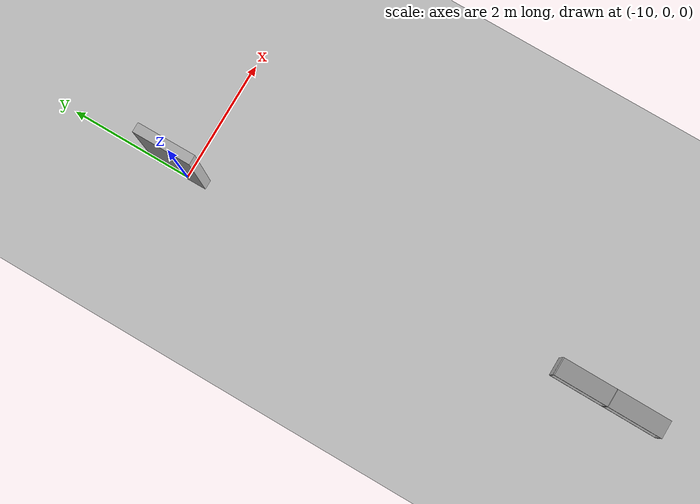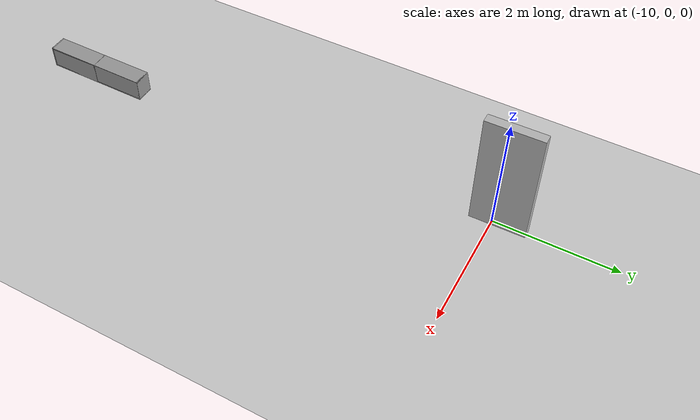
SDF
<sdf version="1.7">
 <world name="default">
  <model name="ground_plane">
   <static>1</static>
   <link name="link">
    <collision name="collision">
     <geometry><plane><normal>0 0 1</normal><size>100 100</size></plane></geometry>
     <surface><friction><ode><mu>100</mu><mu2>50</mu2></ode></friction></surface>
    </collision>
    <visual name="visual">
     <cast_shadows>0</cast_shadows>
     <geometry><plane><normal>0 0 1</normal><size>100 100</size></plane></geometry>
     <material>
      <script><uri>file://media/materials/scripts/gazebo.material</uri><name>Gazebo/Grey</name></script>
     </material>
    </visual>
   </link>
  </model>
  <model name="door">
   <link name="link_0">
    <visual name="visual">
     <pose>0 0 1 0 -0 0</pose>
     <geometry><box><size>0.9 0.15 2</size></box></geometry>
     <material>
      <script>
       <uri>model://door/materials/scripts</uri>
       <uri>model://door/materials/textures</uri>
       <name>door</name>
      </script>
     </material>
    </visual>
    <collision name="collision">
     <pose>0 0 1 0 -0 0</pose>
     <geometry><box><size>0.9 0.15 2</size></box></geometry>
    </collision>
   </link>
   <static>1</static>
   <pose>-9.95414 0.113019 0.058309 5.2e-05 0.011006 -1.56611</pose>
  </model>
  <model name="Wall_Cabinet_36x15W_clone_0">
   <link name="Wall_0">
    <pose>0 0 0.01 0 -0 0</pose>
    <inertial>
     <mass>1.9796</mass>
     <inertia><ixx>0.0145</ixx><iyy>0.1511</iyy><izz>0.1367</izz><ixy>0</ixy><ixz>0</ixz><iyz>0</iyz></inertia>
    </inertial>
    <collision name="Wall_0_Collision"><geometry><box><size>0.91 0.296 0.02</size></box></geometry></collision>
    <visual name="Wall_0_Visual">
     <geometry><box><size>0.91 0.296 0.02</size></box></geometry>
     <material>
      <script><uri>file://media/materials/scripts/gazebo.material</uri><name>Gazebo/Grey</name></script>
      <ambient>1 1 1 1</ambient>
     </material>
    </visual>
   </link>
   <joint name="0_2" type="fixed">
    <pose>-0.455 0 0 0 -0 0</pose>
    <parent>Wall_2</parent>
    <child>Wall_0</child>
    <axis><xyz>0 0 1</xyz><limit><lower>-1e+16</lower><upper>1e+16</upper></limit></axis>
   </joint>
   <joint name="0_4" type="fixed">
    <pose>0.455 0 0 0 -0 0</pose>
    <parent>Wall_4</parent>
    <child>Wall_0</child>
    <axis><xyz>0 0 1</xyz><limit><lower>-1e+16</lower><upper>1e+16</upper></limit></axis>
   </joint>
   <joint name="0_8" type="fixed">
    <pose>0 -0.148 0 0 -0 0</pose>
    <parent>Wall_8</parent>
    <child>Wall_0</child>
    <axis><xyz>0 0 1</xyz><limit><lower>-1e+16</lower><upper>1e+16</upper></limit></axis>
   </joint>
   <link name="Wall_2">
    <pose>-0.445 0 0.192 0 -0 0</pose>
    <inertial>
     <mass>0.8353</mass>
     <inertia><ixx>0.0061</ixx><iyy>0.0164</iyy><izz>0.0103</izz><ixy>0</ixy><ixz>0</ixz><iyz>0</iyz></inertia>
    </inertial>
    <collision name="Wall_2_Collision"><geometry><box><size>0.02 0.296 0.384</size></box></geometry></collision>
    <visual name="Wall_2_Visual">
     <geometry><box><size>0.02 0.296 0.384</size></box></geometry>
     <material>
      <script><uri>file://media/materials/scripts/gazebo.material</uri><name>Gazebo/Grey</name></script>
      <ambient>1 1 1 1</ambient>
     </material>
    </visual>
   </link>
   <link name="Wall_4">
    <pose>0.445 0 0.192 0 -0 0</pose>
    <inertial>
     <mass>0.8353</mass>
     <inertia><ixx>0.0061</ixx><iyy>0.0164</iyy><izz>0.0103</izz><ixy>0</ixy><ixz>0</ixz><iyz>0</iyz></inertia>
    </inertial>
    <collision name="Wall_4_Collision"><geometry><box><size>0.02 0.296 0.384</size></box></geometry></collision>
    <visual name="Wall_4_Visual">
     <geometry><box><size>0.02 0.296 0.384</size></box></geometry>
     <material>
      <script><uri>file://media/materials/scripts/gazebo.material</uri><name>Gazebo/Grey</name></script>
      <ambient>1 1 1 1</ambient>
     </material>
    </visual>
   </link>
   <link name="Wall_6">
    <pose>0 0 0.374 0 -0 0</pose>
    <inertial>
     <mass>1.9796</mass>
     <inertia><ixx>0.0145</ixx><iyy>0.1511</iyy><izz>0.1367</izz><ixy>0</ixy><ixz>0</ixz><iyz>0</iyz></inertia>
    </inertial>
    <collision name="Wall_6_Collision"><geometry><box><size>0.91 0.296 0.02</size></box></geometry></collision>
    <visual name="Wall_6_Visual">
     <geometry><box><size>0.91 0.296 0.02</size></box></geometry>
     <material>
      <script><uri>file://media/materials/scripts/gazebo.material</uri><name>Gazebo/Grey</name></script>
      <ambient>1 1 1 1</ambient>
     </material>
    </visual>
   </link>
   <joint name="6_2" type="fixed">
    <pose>-0.455 0 0 0 -0 0</pose>
    <parent>Wall_2</parent>
    <child>Wall_6</child>
    <axis><xyz>0 0 1</xyz><limit><lower>-1e+16</lower><upper>1e+16</upper></limit></axis>
   </joint>
   <joint name="6_4" type="fixed">
    <pose>0.455 0 0 0 -0 0</pose>
    <parent>Wall_4</parent>
    <child>Wall_6</child>
    <axis><xyz>0 0 1</xyz><limit><lower>-1e+16</lower><upper>1e+16</upper></limit></axis>
   </joint>
   <joint name="6_8" type="fixed">
    <pose>0 -0.148 0 0 -0 0</pose>
    <parent>Wall_8</parent>
    <child>Wall_6</child>
    <axis><xyz>0 0 1</xyz><limit><lower>-1e+16</lower><upper>1e+16</upper></limit></axis>
   </joint>
   <link name="Wall_8">
    <pose>0 -0.138 0.19 0 -0 0</pose>
    <inertial>
     <mass>2.5302</mass>
     <inertia><ixx>0.0305</ixx><iyy>0.1732</iyy><izz>0.2035</izz><ixy>0</ixy><ixz>0</ixz><iyz>0</iyz></inertia>
    </inertial>
    <collision name="Wall_8_Collision"><geometry><box><size>0.906 0.02 0.38</size></box></geometry></collision>
    <visual name="Wall_8_Visual">
     <geometry><box><size>0.906 0.02 0.38</size></box></geometry>
     <material>
      <script><uri>file://media/materials/scripts/gazebo.material</uri><name>Gazebo/Grey</name></script>
      <ambient>1 1 1 1</ambient>
     </material>
    </visual>
   </link>
   <joint name="8_2" type="fixed">
    <pose>-0.453 0 0 0 -0 0</pose>
    <parent>Wall_2</parent>
    <child>Wall_8</child>
    <axis><xyz>0 1 0</xyz><limit><lower>-1e+16</lower><upper>1e+16</upper></limit></axis>
   </joint>
   <joint name="8_4" type="fixed">
    <pose>0.453 0 0 0 -0 0</pose>
    <parent>Wall_4</parent>
    <child>Wall_8</child>
    <axis><xyz>0 1 0</xyz><limit><lower>-1e+16</lower><upper>1e+16</upper></limit></axis>
   </joint>
   <static>1</static>
   <pose>-9.69116 -7.52866 0.047595 0 -0 1.56456</pose>
  </model>
  <model name="Wall_Cabinet_36x15W_clone_1">
   <link name="Wall_0">
    <pose>0 0 0.01 0 -0 0</pose>
    <inertial>
     <mass>1.9796</mass>
     <inertia><ixx>0.0145</ixx><iyy>0.1511</iyy><izz>0.1367</izz><ixy>0</ixy><ixz>0</ixz><iyz>0</iyz></inertia>
    </inertial>
    <collision name="Wall_0_Collision"><geometry><box><size>0.91 0.296 0.02</size></box></geometry></collision>
    <visual name="Wall_0_Visual">
     <geometry><box><size>0.91 0.296 0.02</size></box></geometry>
     <material>
      <script><uri>file://media/materials/scripts/gazebo.material</uri><name>Gazebo/Grey</name></script>
      <ambient>1 1 1 1</ambient>
     </material>
    </visual>
   </link>
   <joint name="0_2" type="fixed">
    <pose>-0.455 0 0 0 -0 0</pose>
    <parent>Wall_2</parent>
    <child>Wall_0</child>
    <axis><xyz>0 0 1</xyz><limit><lower>-1e+16</lower><upper>1e+16</upper></limit></axis>
   </joint>
   <joint name="0_4" type="fixed">
    <pose>0.455 0 0 0 -0 0</pose>
    <parent>Wall_4</parent>
    <child>Wall_0</child>
    <axis><xyz>0 0 1</xyz><limit><lower>-1e+16</lower><upper>1e+16</upper></limit></axis>
   </joint>
   <joint name="0_8" type="fixed">
    <pose>0 -0.148 0 0 -0 0</pose>
    <parent>Wall_8</parent>
    <child>Wall_0</child>
    <axis><xyz>0 0 1</xyz><limit><lower>-1e+16</lower><upper>1e+16</upper></limit></axis>
   </joint>
   <link name="Wall_2">
    <pose>-0.445 0 0.192 0 -0 0</pose>
    <inertial>
     <mass>0.8353</mass>
     <inertia><ixx>0.0061</ixx><iyy>0.0164</iyy><izz>0.0103</izz><ixy>0</ixy><ixz>0</ixz><iyz>0</iyz></inertia>
    </inertial>
    <collision name="Wall_2_Collision"><geometry><box><size>0.02 0.296 0.384</size></box></geometry></collision>
    <visual name="Wall_2_Visual">
     <geometry><box><size>0.02 0.296 0.384</size></box></geometry>
     <material>
      <script><uri>file://media/materials/scripts/gazebo.material</uri><name>Gazebo/Grey</name></script>
      <ambient>1 1 1 1</ambient>
     </material>
    </visual>
   </link>
   <link name="Wall_4">
    <pose>0.445 0 0.192 0 -0 0</pose>
    <inertial>
     <mass>0.8353</mass>
     <inertia><ixx>0.0061</ixx><iyy>0.0164</iyy><izz>0.0103</izz><ixy>0</ixy><ixz>0</ixz><iyz>0</iyz></inertia>
    </inertial>
    <collision name="Wall_4_Collision"><geometry><box><size>0.02 0.296 0.384</size></box></geometry></collision>
    <visual name="Wall_4_Visual">
     <geometry><box><size>0.02 0.296 0.384</size></box></geometry>
     <material>
      <script><uri>file://media/materials/scripts/gazebo.material</uri><name>Gazebo/Grey</name></script>
      <ambient>1 1 1 1</ambient>
     </material>
    </visual>
   </link>
   <link name="Wall_6">
    <pose>0 0 0.374 0 -0 0</pose>
    <inertial>
     <mass>1.9796</mass>
     <inertia><ixx>0.0145</ixx><iyy>0.1511</iyy><izz>0.1367</izz><ixy>0</ixy><ixz>0</ixz><iyz>0</iyz></inertia>
    </inertial>
    <collision name="Wall_6_Collision"><geometry><box><size>0.91 0.296 0.02</size></box></geometry></collision>
    <visual name="Wall_6_Visual">
     <geometry><box><size>0.91 0.296 0.02</size></box></geometry>
     <material>
      <script><uri>file://media/materials/scripts/gazebo.material</uri><name>Gazebo/Grey</name></script>
      <ambient>1 1 1 1</ambient>
     </material>
    </visual>
   </link>
   <joint name="6_2" type="fixed">
    <pose>-0.455 0 0 0 -0 0</pose>
    <parent>Wall_2</parent>
    <child>Wall_6</child>
    <axis><xyz>0 0 1</xyz><limit><lower>-1e+16</lower><upper>1e+16</upper></limit></axis>
   </joint>
   <joint name="6_4" type="fixed">
    <pose>0.455 0 0 0 -0 0</pose>
    <parent>Wall_4</parent>
    <child>Wall_6</child>
    <axis><xyz>0 0 1</xyz><limit><lower>-1e+16</lower><upper>1e+16</upper></limit></axis>
   </joint>
   <joint name="6_8" type="fixed">
    <pose>0 -0.148 0 0 -0 0</pose>
    <parent>Wall_8</parent>
    <child>Wall_6</child>
    <axis><xyz>0 0 1</xyz><limit><lower>-1e+16</lower><upper>1e+16</upper></limit></axis>
   </joint>
   <link name="Wall_8">
    <pose>0 -0.138 0.19 0 -0 0</pose>
    <inertial>
     <mass>2.5302</mass>
     <inertia><ixx>0.0305</ixx><iyy>0.1732</iyy><izz>0.2035</izz><ixy>0</ixy><ixz>0</ixz><iyz>0</iyz></inertia>
    </inertial>
    <collision name="Wall_8_Collision"><geometry><box><size>0.906 0.02 0.38</size></box></geometry></collision>
    <visual name="Wall_8_Visual">
     <geometry><box><size>0.906 0.02 0.38</size></box></geometry>
     <material>
      <script><uri>file://media/materials/scripts/gazebo.material</uri><name>Gazebo/Grey</name></script>
      <ambient>1 1 1 1</ambient>
     </material>
    </visual>
   </link>
   <joint name="8_2" type="fixed">
    <pose>-0.453 0 0 0 -0 0</pose>
    <parent>Wall_2</parent>
    <child>Wall_8</child>
    <axis><xyz>0 1 0</xyz><limit><lower>-1e+16</lower><upper>1e+16</upper></limit></axis>
   </joint>
   <joint name="8_4" type="fixed">
    <pose>0.453 0 0 0 -0 0</pose>
    <parent>Wall_4</parent>
    <child>Wall_8</child>
    <axis><xyz>0 1 0</xyz><limit><lower>-1e+16</lower><upper>1e+16</upper></limit></axis>
   </joint>
   <static>1</static>
   <pose>-9.68653 -6.63406 0.047595 0 -0 1.56456</pose>
  </model>
 </world>
</sdf>
